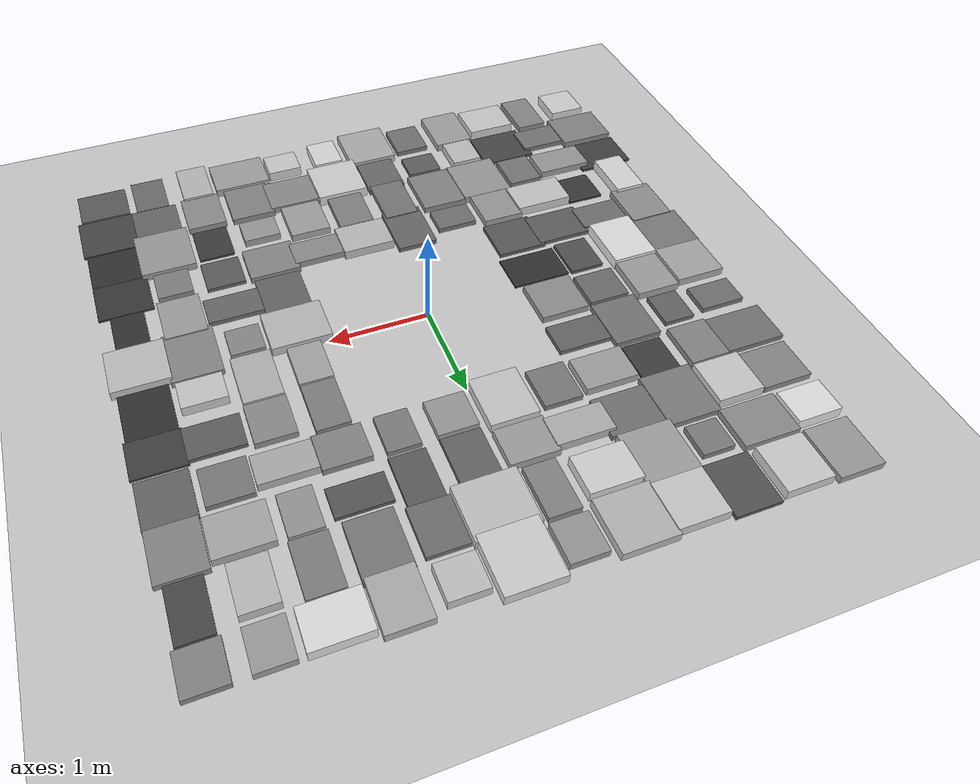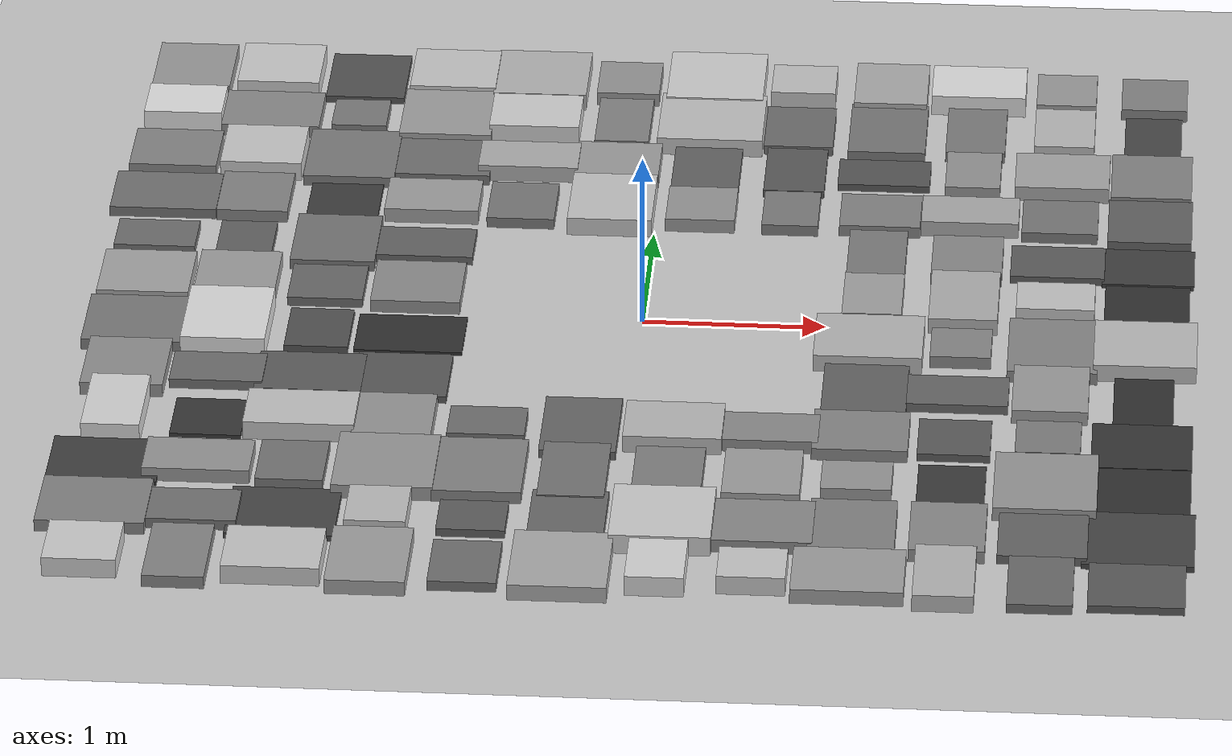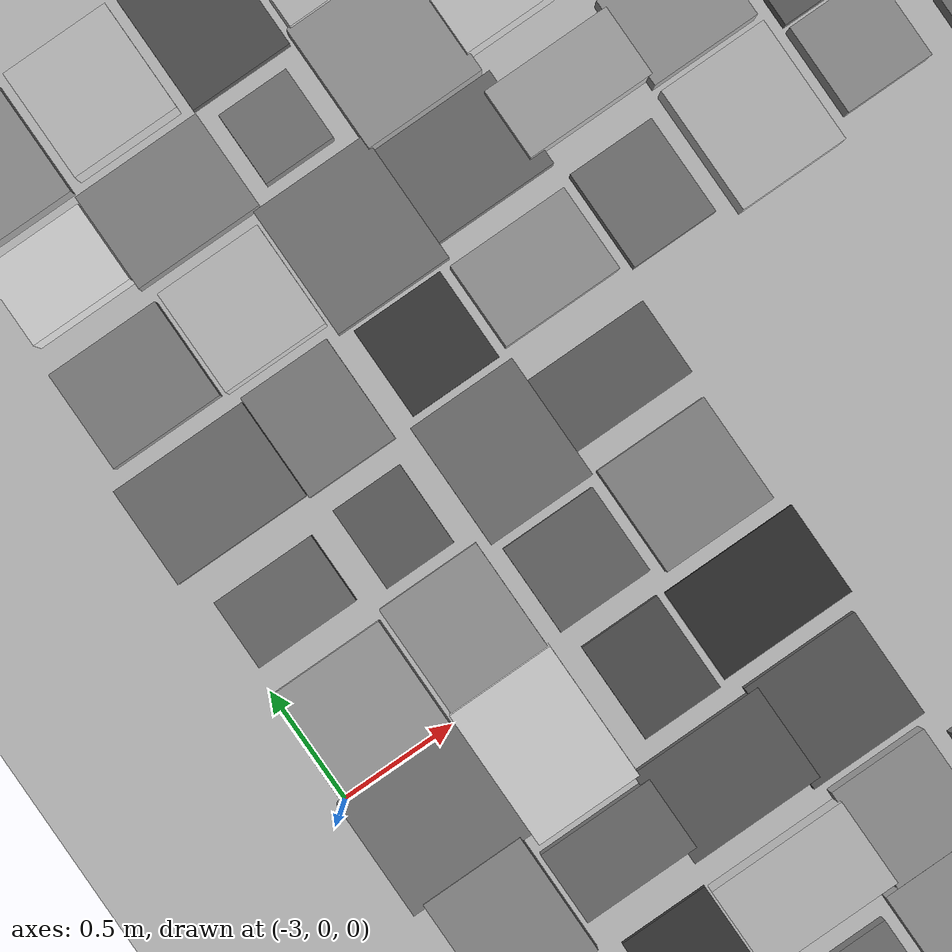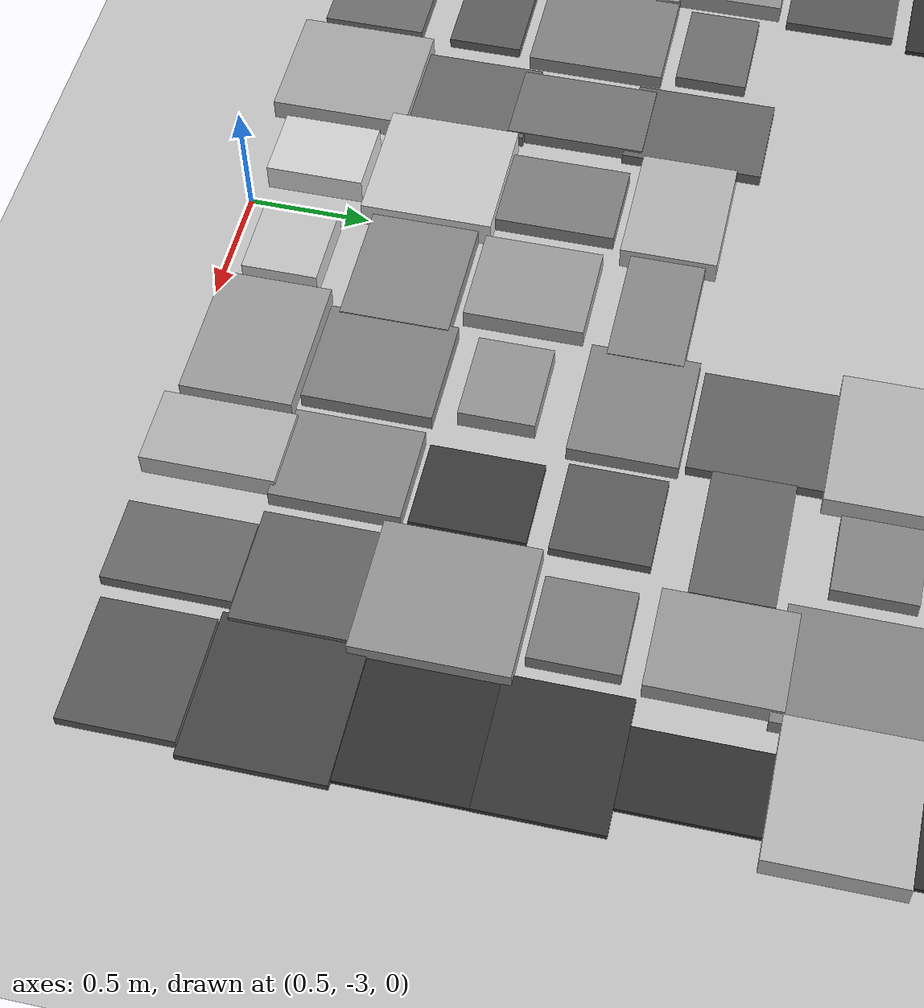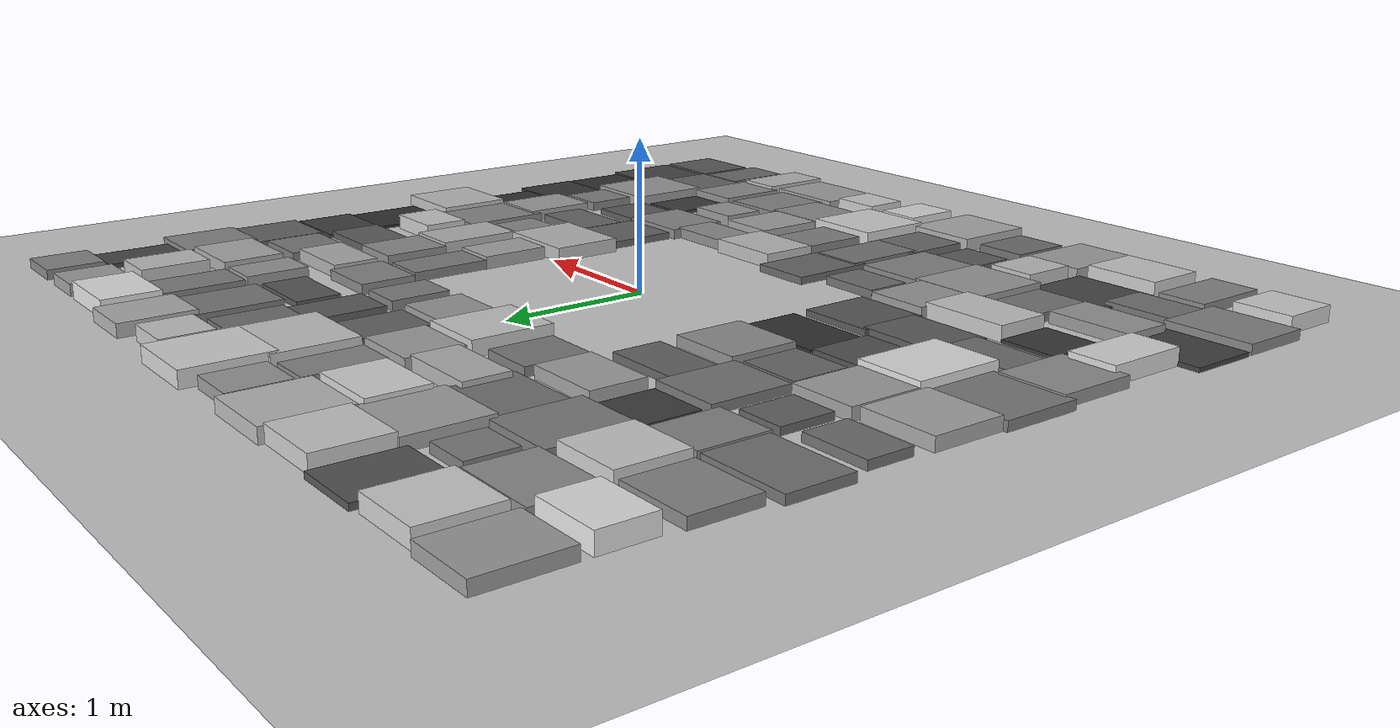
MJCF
<mujoco model="terrain_scene">
  <compiler angle="radian" coordinate="local" inertiafromgeom="true" />
  <option timestep="0.002" gravity="0.0 0.0 -9.81" iterations="50" solver="Newton" />
  <visual>
    <global offwidth="1920" offheight="1080" />
    <quality shadowsize="4096" />
    <headlight ambient="0.4 0.4 0.4" diffuse="0.6 0.6 0.6" />
  </visual>
  <asset>
    <texture name="grid_texture" type="2d" builtin="checker" rgb1="0.9 0.9 0.9" rgb2="0.7 0.7 0.7" width="512" height="512" />
    <material name="grid_material" texture="grid_texture" texrepeat="10 10" reflectance="0.1" />
  </asset>
  <worldbody>
    <geom name="ground" type="plane" size="6.0 6.0 0.1" pos="0 0 0" rgba="0.8 0.8 0.8 1.0" friction="1.0 0.005 0.0001" />
    <geom name="box_0" type="box" size="0.1949 0.1995 0.0544" pos="-2.7500 -2.7500 0.0544" rgba="0.821 0.821 0.821 1.000" friction="1.0 0.005 0.0001" />
    <geom name="box_1" type="box" size="0.2901 0.2382 0.0334" pos="-2.7500 -2.2500 0.0334" rgba="0.528 0.528 0.528 1.000" friction="1.0 0.005 0.0001" />
    <geom name="box_2" type="box" size="0.2968 0.2290 0.0143" pos="-2.7500 -1.7500 0.0143" rgba="0.260 0.260 0.260 1.000" friction="1.0 0.005 0.0001" />
    <geom name="box_3" type="box" size="0.1573 0.2765 0.0567" pos="-2.7500 -1.2500 0.0567" rgba="0.853 0.853 0.853 1.000" friction="1.0 0.005 0.0001" />
    <geom name="box_4" type="box" size="0.2241 0.2595 0.0369" pos="-2.7500 -0.7500 0.0369" rgba="0.577 0.577 0.577 1.000" friction="1.0 0.005 0.0001" />
    <geom name="box_5" type="box" size="0.2781 0.2581 0.0311" pos="-2.7500 -0.2500 0.0311" rgba="0.495 0.495 0.495 1.000" friction="1.0 0.005 0.0001" />
    <geom name="box_6" type="box" size="0.2522 0.2390 0.0429" pos="-2.7500 0.2500 0.0429" rgba="0.660 0.660 0.660 1.000" friction="1.0 0.005 0.0001" />
    <geom name="box_7" type="box" size="0.2248 0.1510 0.0278" pos="-2.7500 0.7500 0.0278" rgba="0.449 0.449 0.449 1.000" friction="1.0 0.005 0.0001" />
    <geom name="box_8" type="box" size="0.2975 0.2153 0.0287" pos="-2.7500 1.2500 0.0287" rgba="0.462 0.462 0.462 1.000" friction="1.0 0.005 0.0001" />
    <geom name="box_9" type="box" size="0.2455 0.2164 0.0342" pos="-2.7500 1.7500 0.0342" rgba="0.539 0.539 0.539 1.000" friction="1.0 0.005 0.0001" />
    <geom name="box_10" type="box" size="0.2205 0.1718 0.0600" pos="-2.7500 2.2500 0.0600" rgba="0.900 0.900 0.900 1.000" friction="1.0 0.005 0.0001" />
    <geom name="box_11" type="box" size="0.2225 0.2629 0.0399" pos="-2.7500 2.7500 0.0399" rgba="0.619 0.619 0.619 1.000" friction="1.0 0.005 0.0001" />
    <geom name="box_12" type="box" size="0.1626 0.2774 0.0342" pos="-2.2500 -2.7500 0.0342" rgba="0.538 0.538 0.538 1.000" friction="1.0 0.005 0.0001" />
    <geom name="box_13" type="box" size="0.2663 0.1648 0.0288" pos="-2.2500 -2.2500 0.0288" rgba="0.463 0.463 0.463 1.000" friction="1.0 0.005 0.0001" />
    <geom name="box_14" type="box" size="0.2866 0.1674 0.0387" pos="-2.2500 -1.7500 0.0387" rgba="0.602 0.602 0.602 1.000" friction="1.0 0.005 0.0001" />
    <geom name="box_15" type="box" size="0.1917 0.1951 0.0119" pos="-2.2500 -1.2500 0.0119" rgba="0.227 0.227 0.227 1.000" friction="1.0 0.005 0.0001" />
    <geom name="box_16" type="box" size="0.2520 0.1572 0.0276" pos="-2.2500 -0.7500 0.0276" rgba="0.446 0.446 0.446 1.000" friction="1.0 0.005 0.0001" />
    <geom name="box_17" type="box" size="0.2302 0.2959 0.0588" pos="-2.2500 -0.2500 0.0588" rgba="0.884 0.884 0.884 1.000" friction="1.0 0.005 0.0001" />
    <geom name="box_18" type="box" size="0.2230 0.2721 0.0410" pos="-2.2500 0.2500 0.0410" rgba="0.633 0.633 0.633 1.000" friction="1.0 0.005 0.0001" />
    <geom name="box_19" type="box" size="0.1550 0.1810 0.0242" pos="-2.2500 0.7500 0.0242" rgba="0.399 0.399 0.399 1.000" friction="1.0 0.005 0.0001" />
    <geom name="box_20" type="box" size="0.1983 0.2298 0.0337" pos="-2.2500 1.2500 0.0337" rgba="0.531 0.531 0.531 1.000" friction="1.0 0.005 0.0001" />
    <geom name="box_21" type="box" size="0.2291 0.2261 0.0530" pos="-2.2500 1.7500 0.0530" rgba="0.802 0.802 0.802 1.000" friction="1.0 0.005 0.0001" />
    <geom name="box_22" type="box" size="0.2779 0.2114 0.0357" pos="-2.2500 2.2500 0.0357" rgba="0.559 0.559 0.559 1.000" friction="1.0 0.005 0.0001" />
    <geom name="box_23" type="box" size="0.2335 0.2383 0.0537" pos="-2.2500 2.7500 0.0537" rgba="0.811 0.811 0.811 1.000" friction="1.0 0.005 0.0001" />
    <geom name="box_24" type="box" size="0.2581 0.2128 0.0526" pos="-1.7500 -2.7500 0.0526" rgba="0.797 0.797 0.797 1.000" friction="1.0 0.005 0.0001" />
    <geom name="box_25" type="box" size="0.2898 0.2472 0.0162" pos="-1.7500 -2.2500 0.0162" rgba="0.287 0.287 0.287 1.000" friction="1.0 0.005 0.0001" />
    <geom name="box_26" type="box" size="0.1806 0.2110 0.0295" pos="-1.7500 -1.7500 0.0295" rgba="0.473 0.473 0.473 1.000" friction="1.0 0.005 0.0001" />
    <geom name="box_27" type="box" size="0.2981 0.1859 0.0515" pos="-1.7500 -1.2500 0.0515" rgba="0.782 0.782 0.782 1.000" friction="1.0 0.005 0.0001" />
    <geom name="box_28" type="box" size="0.2895 0.2078 0.0225" pos="-1.7500 -0.7500 0.0225" rgba="0.375 0.375 0.375 1.000" friction="1.0 0.005 0.0001" />
    <geom name="box_29" type="box" size="0.1738 0.2129 0.0193" pos="-1.7500 -0.2500 0.0193" rgba="0.330 0.330 0.330 1.000" friction="1.0 0.005 0.0001" />
    <geom name="box_30" type="box" size="0.2066 0.1930 0.0263" pos="-1.7500 0.2500 0.0263" rgba="0.428 0.428 0.428 1.000" friction="1.0 0.005 0.0001" />
    <geom name="box_31" type="box" size="0.2346 0.2696 0.0293" pos="-1.7500 0.7500 0.0293" rgba="0.471 0.471 0.471 1.000" friction="1.0 0.005 0.0001" />
    <geom name="box_32" type="box" size="0.1997 0.1987 0.0135" pos="-1.7500 1.2500 0.0135" rgba="0.250 0.250 0.250 1.000" friction="1.0 0.005 0.0001" />
    <geom name="box_33" type="box" size="0.2558 0.2828 0.0313" pos="-1.7500 1.7500 0.0313" rgba="0.499 0.499 0.499 1.000" friction="1.0 0.005 0.0001" />
    <geom name="box_34" type="box" size="0.1555 0.1586 0.0313" pos="-1.7500 2.2500 0.0313" rgba="0.499 0.499 0.499 1.000" friction="1.0 0.005 0.0001" />
    <geom name="box_35" type="box" size="0.2234 0.2652 0.0199" pos="-1.7500 2.7500 0.0199" rgba="0.338 0.338 0.338 1.000" friction="1.0 0.005 0.0001" />
    <geom name="box_36" type="box" size="0.2106 0.2839 0.0413" pos="-1.2500 -2.7500 0.0413" rgba="0.638 0.638 0.638 1.000" friction="1.0 0.005 0.0001" />
    <geom name="box_37" type="box" size="0.1627 0.1879 0.0496" pos="-1.2500 -2.2500 0.0496" rgba="0.755 0.755 0.755 1.000" friction="1.0 0.005 0.0001" />
    <geom name="box_38" type="box" size="0.2694 0.2863 0.0394" pos="-1.2500 -1.7500 0.0394" rgba="0.611 0.611 0.611 1.000" friction="1.0 0.005 0.0001" />
    <geom name="box_39" type="box" size="0.2127 0.2288 0.0390" pos="-1.2500 -1.2500 0.0390" rgba="0.605 0.605 0.605 1.000" friction="1.0 0.005 0.0001" />
    <geom name="box_40" type="box" size="0.2553 0.2341 0.0214" pos="-1.2500 -0.7500 0.0214" rgba="0.359 0.359 0.359 1.000" friction="1.0 0.005 0.0001" />
    <geom name="box_41" type="box" size="0.2954 0.2018 0.0100" pos="-1.2500 -0.2500 0.0100" rgba="0.200 0.200 0.200 1.000" friction="1.0 0.005 0.0001" />
    <geom name="box_42" type="box" size="0.2457 0.2329 0.0364" pos="-1.2500 0.2500 0.0364" rgba="0.569 0.569 0.569 1.000" friction="1.0 0.005 0.0001" />
    <geom name="box_43" type="box" size="0.2683 0.1652 0.0247" pos="-1.2500 0.7500 0.0247" rgba="0.406 0.406 0.406 1.000" friction="1.0 0.005 0.0001" />
    <geom name="box_44" type="box" size="0.2615 0.1862 0.0413" pos="-1.2500 1.2500 0.0413" rgba="0.638 0.638 0.638 1.000" friction="1.0 0.005 0.0001" />
    <geom name="box_45" type="box" size="0.2869 0.2142 0.0285" pos="-1.2500 1.7500 0.0285" rgba="0.459 0.459 0.459 1.000" friction="1.0 0.005 0.0001" />
    <geom name="box_46" type="box" size="0.2603 0.2740 0.0415" pos="-1.2500 2.2500 0.0415" rgba="0.641 0.641 0.641 1.000" friction="1.0 0.005 0.0001" />
    <geom name="box_47" type="box" size="0.2442 0.2324 0.0528" pos="-1.2500 2.7500 0.0528" rgba="0.799 0.799 0.799 1.000" friction="1.0 0.005 0.0001" />
    <geom name="box_48" type="box" size="0.1804 0.2161 0.0280" pos="-0.7500 -2.7500 0.0280" rgba="0.452 0.452 0.452 1.000" friction="1.0 0.005 0.0001" />
    <geom name="box_49" type="box" size="0.1818 0.1548 0.0229" pos="-0.7500 -2.2500 0.0229" rgba="0.381 0.381 0.381 1.000" friction="1.0 0.005 0.0001" />
    <geom name="box_50" type="box" size="0.2387 0.2884 0.0338" pos="-0.7500 -1.7500 0.0338" rgba="0.533 0.533 0.533 1.000" friction="1.0 0.005 0.0001" />
    <geom name="box_51" type="box" size="0.2081 0.1503 0.0278" pos="-0.7500 -1.2500 0.0278" rgba="0.450 0.450 0.450 1.000" friction="1.0 0.005 0.0001" />
    <geom name="box_52" type="box" size="0.1877 0.2148 0.0305" pos="-0.7500 1.2500 0.0305" rgba="0.487 0.487 0.487 1.000" friction="1.0 0.005 0.0001" />
    <geom name="box_53" type="box" size="0.2799 0.1536 0.0459" pos="-0.7500 1.7500 0.0459" rgba="0.702 0.702 0.702 1.000" friction="1.0 0.005 0.0001" />
    <geom name="box_54" type="box" size="0.2542 0.1966 0.0553" pos="-0.7500 2.2500 0.0553" rgba="0.834 0.834 0.834 1.000" friction="1.0 0.005 0.0001" />
    <geom name="box_55" type="box" size="0.2651 0.2676 0.0476" pos="-0.7500 2.7500 0.0476" rgba="0.726 0.726 0.726 1.000" friction="1.0 0.005 0.0001" />
    <geom name="box_56" type="box" size="0.2592 0.2869 0.0447" pos="-0.2500 -2.7500 0.0447" rgba="0.686 0.686 0.686 1.000" friction="1.0 0.005 0.0001" />
    <geom name="box_57" type="box" size="0.2018 0.2818 0.0261" pos="-0.2500 -2.2500 0.0261" rgba="0.426 0.426 0.426 1.000" friction="1.0 0.005 0.0001" />
    <geom name="box_58" type="box" size="0.1785 0.2869 0.0296" pos="-0.2500 -1.7500 0.0296" rgba="0.475 0.475 0.475 1.000" friction="1.0 0.005 0.0001" />
    <geom name="box_59" type="box" size="0.2058 0.2913 0.0254" pos="-0.2500 -1.2500 0.0254" rgba="0.415 0.415 0.415 1.000" friction="1.0 0.005 0.0001" />
    <geom name="box_60" type="box" size="0.2348 0.2723 0.0520" pos="-0.2500 1.2500 0.0520" rgba="0.788 0.788 0.788 1.000" friction="1.0 0.005 0.0001" />
    <geom name="box_61" type="box" size="0.2364 0.1944 0.0410" pos="-0.2500 1.7500 0.0410" rgba="0.634 0.634 0.634 1.000" friction="1.0 0.005 0.0001" />
    <geom name="box_62" type="box" size="0.1526 0.2608 0.0336" pos="-0.2500 2.2500 0.0336" rgba="0.531 0.531 0.531 1.000" friction="1.0 0.005 0.0001" />
    <geom name="box_63" type="box" size="0.1774 0.1953 0.0388" pos="-0.2500 2.7500 0.0388" rgba="0.603 0.603 0.603 1.000" friction="1.0 0.005 0.0001" />
    <geom name="box_64" type="box" size="0.1545 0.2011 0.0569" pos="0.2500 -2.7500 0.0569" rgba="0.857 0.857 0.857 1.000" friction="1.0 0.005 0.0001" />
    <geom name="box_65" type="box" size="0.2690 0.2704 0.0545" pos="0.2500 -2.2500 0.0545" rgba="0.822 0.822 0.822 1.000" friction="1.0 0.005 0.0001" />
    <geom name="box_66" type="box" size="0.1848 0.2620 0.0327" pos="0.2500 -1.7500 0.0327" rgba="0.518 0.518 0.518 1.000" friction="1.0 0.005 0.0001" />
    <geom name="box_67" type="box" size="0.2646 0.1960 0.0486" pos="0.2500 -1.2500 0.0486" rgba="0.741 0.741 0.741 1.000" friction="1.0 0.005 0.0001" />
    <geom name="box_68" type="box" size="0.1922 0.1956 0.0393" pos="0.2500 1.2500 0.0393" rgba="0.610 0.610 0.610 1.000" friction="1.0 0.005 0.0001" />
    <geom name="box_69" type="box" size="0.1894 0.2846 0.0245" pos="0.2500 1.7500 0.0245" rgba="0.403 0.403 0.403 1.000" friction="1.0 0.005 0.0001" />
    <geom name="box_70" type="box" size="0.2965 0.2763 0.0509" pos="0.2500 2.2500 0.0509" rgba="0.773 0.773 0.773 1.000" friction="1.0 0.005 0.0001" />
    <geom name="box_71" type="box" size="0.2741 0.2855 0.0549" pos="0.2500 2.7500 0.0549" rgba="0.828 0.828 0.828 1.000" friction="1.0 0.005 0.0001" />
    <geom name="box_72" type="box" size="0.1794 0.1547 0.0529" pos="0.7500 -2.7500 0.0529" rgba="0.801 0.801 0.801 1.000" friction="1.0 0.005 0.0001" />
    <geom name="box_73" type="box" size="0.2969 0.2210 0.0355" pos="0.7500 -2.2500 0.0355" rgba="0.557 0.557 0.557 1.000" friction="1.0 0.005 0.0001" />
    <geom name="box_74" type="box" size="0.2066 0.2411 0.0413" pos="0.7500 -1.7500 0.0413" rgba="0.639 0.639 0.639 1.000" friction="1.0 0.005 0.0001" />
    <geom name="box_75" type="box" size="0.2761 0.1521 0.0358" pos="0.7500 -1.2500 0.0358" rgba="0.562 0.562 0.562 1.000" friction="1.0 0.005 0.0001" />
    <geom name="box_76" type="box" size="0.1562 0.2026 0.0316" pos="0.7500 1.2500 0.0316" rgba="0.502 0.502 0.502 1.000" friction="1.0 0.005 0.0001" />
    <geom name="box_77" type="box" size="0.1698 0.2554 0.0220" pos="0.7500 1.7500 0.0220" rgba="0.368 0.368 0.368 1.000" friction="1.0 0.005 0.0001" />
    <geom name="box_78" type="box" size="0.1950 0.2409 0.0274" pos="0.7500 2.2500 0.0274" rgba="0.444 0.444 0.444 1.000" friction="1.0 0.005 0.0001" />
    <geom name="box_79" type="box" size="0.1826 0.1719 0.0511" pos="0.7500 2.7500 0.0511" rgba="0.775 0.775 0.775 1.000" friction="1.0 0.005 0.0001" />
    <geom name="box_80" type="box" size="0.2944 0.2241 0.0414" pos="1.2500 -2.7500 0.0414" rgba="0.640 0.640 0.640 1.000" friction="1.0 0.005 0.0001" />
    <geom name="box_81" type="box" size="0.2276 0.2585 0.0335" pos="1.2500 -2.2500 0.0335" rgba="0.529 0.529 0.529 1.000" friction="1.0 0.005 0.0001" />
    <geom name="box_82" type="box" size="0.1874 0.1511 0.0391" pos="1.2500 -1.7500 0.0391" rgba="0.607 0.607 0.607 1.000" friction="1.0 0.005 0.0001" />
    <geom name="box_83" type="box" size="0.2562 0.2147 0.0344" pos="1.2500 -1.2500 0.0344" rgba="0.542 0.542 0.542 1.000" friction="1.0 0.005 0.0001" />
    <geom name="box_84" type="box" size="0.2290 0.2616 0.0244" pos="1.2500 -0.7500 0.0244" rgba="0.402 0.402 0.402 1.000" friction="1.0 0.005 0.0001" />
    <geom name="box_85" type="box" size="0.2951 0.2398 0.0480" pos="1.2500 -0.2500 0.0480" rgba="0.732 0.732 0.732 1.000" friction="1.0 0.005 0.0001" />
    <geom name="box_86" type="box" size="0.1631 0.2322 0.0426" pos="1.2500 0.2500 0.0426" rgba="0.657 0.657 0.657 1.000" friction="1.0 0.005 0.0001" />
    <geom name="box_87" type="box" size="0.1603 0.2720 0.0318" pos="1.2500 0.7500 0.0318" rgba="0.505 0.505 0.505 1.000" friction="1.0 0.005 0.0001" />
    <geom name="box_88" type="box" size="0.2245 0.1892 0.0338" pos="1.2500 1.2500 0.0338" rgba="0.533 0.533 0.533 1.000" friction="1.0 0.005 0.0001" />
    <geom name="box_89" type="box" size="0.2580 0.1513 0.0207" pos="1.2500 1.7500 0.0207" rgba="0.350 0.350 0.350 1.000" friction="1.0 0.005 0.0001" />
    <geom name="box_90" type="box" size="0.2172 0.2889 0.0304" pos="1.2500 2.2500 0.0304" rgba="0.485 0.485 0.485 1.000" friction="1.0 0.005 0.0001" />
    <geom name="box_91" type="box" size="0.2068 0.2479 0.0451" pos="1.2500 2.7500 0.0451" rgba="0.691 0.691 0.691 1.000" friction="1.0 0.005 0.0001" />
    <geom name="box_92" type="box" size="0.1596 0.2637 0.0478" pos="1.7500 -2.7500 0.0478" rgba="0.729 0.729 0.729 1.000" friction="1.0 0.005 0.0001" />
    <geom name="box_93" type="box" size="0.2000 0.2537 0.0358" pos="1.7500 -2.2500 0.0358" rgba="0.561 0.561 0.561 1.000" friction="1.0 0.005 0.0001" />
    <geom name="box_94" type="box" size="0.1800 0.2242 0.0129" pos="1.7500 -1.7500 0.0129" rgba="0.241 0.241 0.241 1.000" friction="1.0 0.005 0.0001" />
    <geom name="box_95" type="box" size="0.1943 0.1909 0.0220" pos="1.7500 -1.2500 0.0220" rgba="0.369 0.369 0.369 1.000" friction="1.0 0.005 0.0001" />
    <geom name="box_96" type="box" size="0.2735 0.1598 0.0256" pos="1.7500 -0.7500 0.0256" rgba="0.418 0.418 0.418 1.000" friction="1.0 0.005 0.0001" />
    <geom name="box_97" type="box" size="0.1650 0.1622 0.0348" pos="1.7500 -0.2500 0.0348" rgba="0.547 0.547 0.547 1.000" friction="1.0 0.005 0.0001" />
    <geom name="box_98" type="box" size="0.1881 0.2793 0.0463" pos="1.7500 0.2500 0.0463" rgba="0.708 0.708 0.708 1.000" friction="1.0 0.005 0.0001" />
    <geom name="box_99" type="box" size="0.1946 0.2263 0.0355" pos="1.7500 0.7500 0.0355" rgba="0.557 0.557 0.557 1.000" friction="1.0 0.005 0.0001" />
    <geom name="box_100" type="box" size="0.2701 0.1554 0.0448" pos="1.7500 1.2500 0.0448" rgba="0.688 0.688 0.688 1.000" friction="1.0 0.005 0.0001" />
    <geom name="box_101" type="box" size="0.1532 0.2126 0.0384" pos="1.7500 1.7500 0.0384" rgba="0.597 0.597 0.597 1.000" friction="1.0 0.005 0.0001" />
    <geom name="box_102" type="box" size="0.1671 0.2692 0.0318" pos="1.7500 2.2500 0.0318" rgba="0.505 0.505 0.505 1.000" friction="1.0 0.005 0.0001" />
    <geom name="box_103" type="box" size="0.2669 0.1920 0.0592" pos="1.7500 2.7500 0.0592" rgba="0.889 0.889 0.889 1.000" friction="1.0 0.005 0.0001" />
    <geom name="box_104" type="box" size="0.1714 0.2498 0.0266" pos="2.2500 -2.7500 0.0266" rgba="0.432 0.432 0.432 1.000" friction="1.0 0.005 0.0001" />
    <geom name="box_105" type="box" size="0.2353 0.2480 0.0250" pos="2.2500 -2.2500 0.0250" rgba="0.410 0.410 0.410 1.000" friction="1.0 0.005 0.0001" />
    <geom name="box_106" type="box" size="0.2741 0.2986 0.0391" pos="2.2500 -1.7500 0.0391" rgba="0.608 0.608 0.608 1.000" friction="1.0 0.005 0.0001" />
    <geom name="box_107" type="box" size="0.1740 0.1722 0.0324" pos="2.2500 -1.2500 0.0324" rgba="0.514 0.514 0.514 1.000" friction="1.0 0.005 0.0001" />
    <geom name="box_108" type="box" size="0.2044 0.2514 0.0407" pos="2.2500 -0.7500 0.0407" rgba="0.630 0.630 0.630 1.000" friction="1.0 0.005 0.0001" />
    <geom name="box_109" type="box" size="0.2444 0.2993 0.0345" pos="2.2500 -0.2500 0.0345" rgba="0.543 0.543 0.543 1.000" friction="1.0 0.005 0.0001" />
    <geom name="box_110" type="box" size="0.2136 0.1534 0.0522" pos="2.2500 0.2500 0.0522" rgba="0.790 0.790 0.790 1.000" friction="1.0 0.005 0.0001" />
    <geom name="box_111" type="box" size="0.2591 0.1781 0.0226" pos="2.2500 0.7500 0.0226" rgba="0.377 0.377 0.377 1.000" friction="1.0 0.005 0.0001" />
    <geom name="box_112" type="box" size="0.2108 0.1954 0.0305" pos="2.2500 1.2500 0.0305" rgba="0.487 0.487 0.487 1.000" friction="1.0 0.005 0.0001" />
    <geom name="box_113" type="box" size="0.2634 0.2060 0.0437" pos="2.2500 1.7500 0.0437" rgba="0.671 0.671 0.671 1.000" friction="1.0 0.005 0.0001" />
    <geom name="box_114" type="box" size="0.1691 0.2297 0.0491" pos="2.2500 2.2500 0.0491" rgba="0.748 0.748 0.748 1.000" friction="1.0 0.005 0.0001" />
    <geom name="box_115" type="box" size="0.1693 0.1901 0.0403" pos="2.2500 2.7500 0.0403" rgba="0.624 0.624 0.624 1.000" friction="1.0 0.005 0.0001" />
    <geom name="box_116" type="box" size="0.2531 0.2202 0.0218" pos="2.7500 -2.7500 0.0218" rgba="0.365 0.365 0.365 1.000" friction="1.0 0.005 0.0001" />
    <geom name="box_117" type="box" size="0.2951 0.2750 0.0158" pos="2.7500 -2.2500 0.0158" rgba="0.281 0.281 0.281 1.000" friction="1.0 0.005 0.0001" />
    <geom name="box_118" type="box" size="0.2676 0.2763 0.0100" pos="2.7500 -1.7500 0.0100" rgba="0.200 0.200 0.200 1.000" friction="1.0 0.005 0.0001" />
    <geom name="box_119" type="box" size="0.2685 0.2379 0.0115" pos="2.7500 -1.2500 0.0115" rgba="0.221 0.221 0.221 1.000" friction="1.0 0.005 0.0001" />
    <geom name="box_120" type="box" size="0.1615 0.2632 0.0100" pos="2.7500 -0.7500 0.0100" rgba="0.200 0.200 0.200 1.000" friction="1.0 0.005 0.0001" />
    <geom name="box_121" type="box" size="0.2789 0.2537 0.0493" pos="2.7500 -0.2500 0.0493" rgba="0.751 0.751 0.751 1.000" friction="1.0 0.005 0.0001" />
    <geom name="box_122" type="box" size="0.2320 0.2926 0.0100" pos="2.7500 0.2500 0.0100" rgba="0.200 0.200 0.200 1.000" friction="1.0 0.005 0.0001" />
    <geom name="box_123" type="box" size="0.2532 0.2037 0.0142" pos="2.7500 0.7500 0.0142" rgba="0.258 0.258 0.258 1.000" friction="1.0 0.005 0.0001" />
    <geom name="box_124" type="box" size="0.2325 0.2475 0.0242" pos="2.7500 1.2500 0.0242" rgba="0.399 0.399 0.399 1.000" friction="1.0 0.005 0.0001" />
    <geom name="box_125" type="box" size="0.2247 0.2558 0.0337" pos="2.7500 1.7500 0.0337" rgba="0.531 0.531 0.531 1.000" friction="1.0 0.005 0.0001" />
    <geom name="box_126" type="box" size="0.1591 0.2738 0.0163" pos="2.7500 2.2500 0.0163" rgba="0.289 0.289 0.289 1.000" friction="1.0 0.005 0.0001" />
    <geom name="box_127" type="box" size="0.1860 0.1914 0.0337" pos="2.7500 2.7500 0.0337" rgba="0.532 0.532 0.532 1.000" friction="1.0 0.005 0.0001" />
    <light name="main_light" pos="0 0 5" dir="0 0 -1" diffuse="0.6 0.6 0.6" specular="0.3 0.3 0.3" castshadow="true" />
    <camera name="track_cam" mode="trackcom" pos="3.0 0 2" xyaxes="0 1 0 -0.5 0 1" />
    <camera name="overview" pos="5 5 8" quat="0.5 0.5 -0.5 -0.5" />
  </worldbody>
</mujoco>
